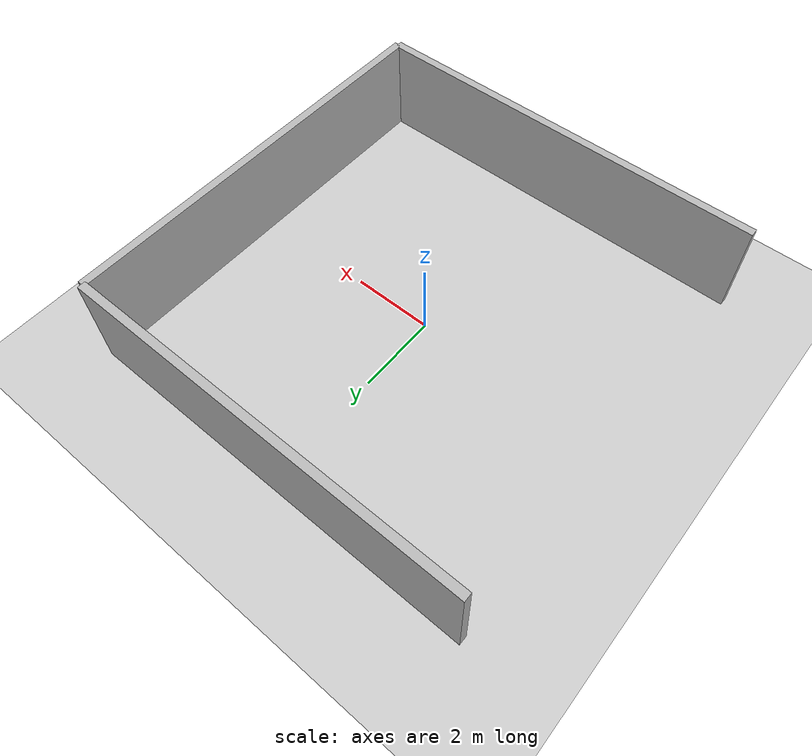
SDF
<?xml version="1.0" ?>
<sdf version="1.6">
  <world name="default">

    <include>
      <uri>model://sun</uri>
    </include>

    <include>
      <uri>model://ground_plane</uri>
    </include>

    <gravity>0 0 -1.62</gravity>

    <model name="habitat_walls">
      <static>true</static>
      <pose>0 0 0 0 0 0</pose>
      <link name="walls_link">

        <visual name="wall_1_visual">
          <pose>0 5 1.25 0 0 0</pose>
          <geometry><box><size>10 0.2 2.5</size></box></geometry>
        </visual>
        <collision name="wall_1_collision">
          <pose>0 5 1.25 0 0 0</pose>
          <geometry><box><size>10 0.2 2.5</size></box></geometry>
        </collision>

        <visual name="wall_2_visual">
          <pose>0 -5 1.25 0 0 0</pose>
          <geometry><box><size>10 0.2 2.5</size></box></geometry>
        </visual>
        <collision name="wall_2_collision">
          <pose>0 -5 1.25 0 0 0</pose>
          <geometry><box><size>10 0.2 2.5</size></box></geometry>
        </collision>

        <visual name="wall_3_visual">
          <pose>5 0 1.25 0 0 1.57</pose>
          <geometry><box><size>10 0.2 2.5</size></box></geometry>
        </visual>
        <collision name="wall_3_collision">
          <pose>5 0 1.25 0 0 1.57</pose>
          <geometry><box><size>10 0.2 2.5</size></box></geometry>
        </collision>

      </link>
    </model>

  </world>
</sdf>
